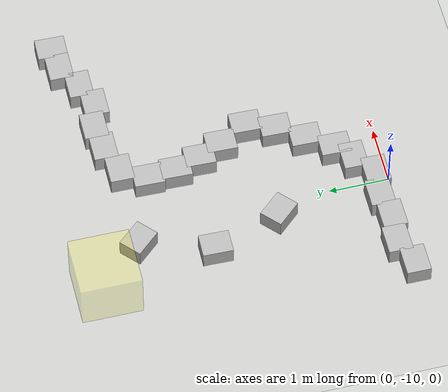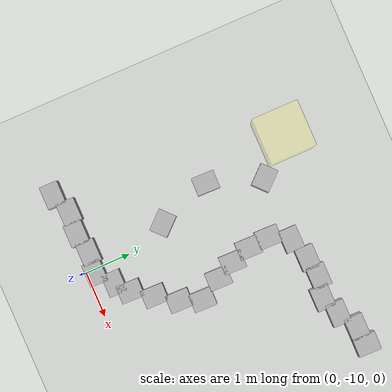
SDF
<sdf version="1.6">
 <world name="default">
  <model name="ground_plane">
   <static>1</static>
   <link name="link">
    <collision name="collision">
     <geometry><plane><normal>0 0 1</normal><size>100 100</size></plane></geometry>
     <surface>
      <contact><collide_bitmask>65535</collide_bitmask></contact>
      <friction><ode><mu>100</mu><mu2>50</mu2></ode></friction>
     </surface>
    </collision>
    <visual name="visual">
     <cast_shadows>0</cast_shadows>
     <geometry><plane><normal>0 0 1</normal><size>100 100</size></plane></geometry>
     <material>
      <script><uri>file://media/materials/scripts/gazebo.material</uri><name>Gazebo/Grey</name></script>
     </material>
    </visual>
   </link>
   <pose>0.215037 0.234206 0 0 -0 0</pose>
  </model>
  <model name="RegionEventBox_clone_0_clone_clone_0_clone_clone">
   <static>1</static>
   <pose>-1.01241 -5.02399 0 0 -0 0</pose>
   <link name="link">
    <visual name="visual">
     <transparency>0.75</transparency>
     <geometry><box><size>1 1 1.75</size></box></geometry>
     <material>
      <script><uri>file://media/materials/scripts/gazebo.material</uri><name>Gazebo/Yellow</name></script>
     </material>
    </visual>
   </link>
   <plugin name="region_event_box" filename="libRegionEventBoxPlugin.so">
    <event><name>model_in_region_event_box</name><type>inclusion</type><active>1</active></event>
   </plugin>
  </model>
  <model name="box_clone_3_clone_clone_clone_0_clone_4">
   <link name="cardboard_box_clone::link">
    <inertial>
     <mass>2</mass>
     <inertia>
      <ixx>0.0416667</ixx>
      <ixy>0</ixy>
      <ixz>0</ixz>
      <iyy>0.0566667</iyy>
      <iyz>0</iyz>
      <izz>0.0683333</izz>
     </inertia>
    </inertial>
    <visual name="visual">
     <pose>0 0 -0.15 0 -0 0</pose>
     <geometry>
      <mesh><uri>model://cardboard_box/meshes/cardboard_box.dae</uri><scale>1.25932 1.00745 0.755591</scale></mesh>
     </geometry>
    </visual>
    <collision name="collision">
     <geometry><box><size>0.5 0.4 0.3</size></box></geometry>
     <surface>
      <friction>
       <ode><mu>1</mu><mu2>1</mu2><fdir1>0 0 0</fdir1><slip1>0</slip1><slip2>0</slip2></ode>
       <torsional>
        <coefficient>1</coefficient>
        <patch_radius>0</patch_radius>
        <surface_radius>0</surface_radius>
        <use_patch_radius>1</use_patch_radius>
        <ode><slip>0</slip></ode>
       </torsional>
      </friction>
      <bounce><restitution_coefficient>0</restitution_coefficient><threshold>1e+06</threshold></bounce>
      <contact>
       <collide_without_contact>0</collide_without_contact>
       <collide_without_contact_bitmask>1</collide_without_contact_bitmask>
       <collide_bitmask>1</collide_bitmask>
       <ode>
        <soft_cfm>0</soft_cfm>
        <soft_erp>0.2</soft_erp>
        <kp>1e+07</kp>
        <kd>1</kd>
        <max_vel>0.1</max_vel>
        <min_depth>0.001</min_depth>
       </ode>
       <bullet>
        <split_impulse>1</split_impulse>
        <split_impulse_penetration_threshold>-0.01</split_impulse_penetration_threshold>
        <soft_cfm>0</soft_cfm>
        <soft_erp>0.2</soft_erp>
        <kp>1e+07</kp>
        <kd>1</kd>
       </bullet>
      </contact>
     </surface>
    </collision>
   </link>
   <static>1</static>
   <pose>3.73755 -5.15106 0.149 0 -0 1.55153</pose>
  </model>
  <model name="box_clone_4">
   <link name="cardboard_box_clone::link">
    <inertial>
     <mass>2</mass>
     <inertia>
      <ixx>0.0416667</ixx>
      <ixy>0</ixy>
      <ixz>0</ixz>
      <iyy>0.0566667</iyy>
      <iyz>0</iyz>
      <izz>0.0683333</izz>
     </inertia>
    </inertial>
    <visual name="visual">
     <pose>0 0 -0.15 0 -0 0</pose>
     <geometry>
      <mesh><uri>model://cardboard_box/meshes/cardboard_box.dae</uri><scale>1.25932 1.00745 0.755591</scale></mesh>
     </geometry>
    </visual>
    <collision name="collision">
     <geometry><box><size>0.5 0.4 0.3</size></box></geometry>
     <surface>
      <friction>
       <ode><mu>1</mu><mu2>1</mu2><fdir1>0 0 0</fdir1><slip1>0</slip1><slip2>0</slip2></ode>
       <torsional>
        <coefficient>1</coefficient>
        <patch_radius>0</patch_radius>
        <surface_radius>0</surface_radius>
        <use_patch_radius>1</use_patch_radius>
        <ode><slip>0</slip></ode>
       </torsional>
      </friction>
      <bounce><restitution_coefficient>0</restitution_coefficient><threshold>1e+06</threshold></bounce>
      <contact>
       <collide_without_contact>0</collide_without_contact>
       <collide_without_contact_bitmask>1</collide_without_contact_bitmask>
       <collide_bitmask>1</collide_bitmask>
       <ode>
        <soft_cfm>0</soft_cfm>
        <soft_erp>0.2</soft_erp>
        <kp>1e+07</kp>
        <kd>1</kd>
        <max_vel>0.1</max_vel>
        <min_depth>0.001</min_depth>
       </ode>
       <bullet>
        <split_impulse>1</split_impulse>
        <split_impulse_penetration_threshold>-0.01</split_impulse_penetration_threshold>
        <soft_cfm>0</soft_cfm>
        <soft_erp>0.2</soft_erp>
        <kp>1e+07</kp>
        <kd>1</kd>
       </bullet>
      </contact>
     </surface>
    </collision>
   </link>
   <static>1</static>
   <pose>3.32403 -5.19757 0.149 0 -0 0</pose>
  </model>
  <model name="box_clone_5">
   <link name="cardboard_box_clone::link">
    <inertial>
     <mass>2</mass>
     <inertia>
      <ixx>0.0416667</ixx>
      <ixy>0</ixy>
      <ixz>0</ixz>
      <iyy>0.0566667</iyy>
      <iyz>0</iyz>
      <izz>0.0683333</izz>
     </inertia>
    </inertial>
    <visual name="visual">
     <pose>0 0 -0.15 0 -0 0</pose>
     <geometry>
      <mesh><uri>model://cardboard_box/meshes/cardboard_box.dae</uri><scale>1.25932 1.00745 0.755591</scale></mesh>
     </geometry>
    </visual>
    <collision name="collision">
     <geometry><box><size>0.5 0.4 0.3</size></box></geometry>
     <surface>
      <friction>
       <ode><mu>1</mu><mu2>1</mu2><fdir1>0 0 0</fdir1><slip1>0</slip1><slip2>0</slip2></ode>
       <torsional>
        <coefficient>1</coefficient>
        <patch_radius>0</patch_radius>
        <surface_radius>0</surface_radius>
        <use_patch_radius>1</use_patch_radius>
        <ode><slip>0</slip></ode>
       </torsional>
      </friction>
      <bounce><restitution_coefficient>0</restitution_coefficient><threshold>1e+06</threshold></bounce>
      <contact>
       <collide_without_contact>0</collide_without_contact>
       <collide_without_contact_bitmask>1</collide_without_contact_bitmask>
       <collide_bitmask>1</collide_bitmask>
       <ode>
        <soft_cfm>0</soft_cfm>
        <soft_erp>0.2</soft_erp>
        <kp>1e+07</kp>
        <kd>1</kd>
        <max_vel>0.1</max_vel>
        <min_depth>0.001</min_depth>
       </ode>
       <bullet>
        <split_impulse>1</split_impulse>
        <split_impulse_penetration_threshold>-0.01</split_impulse_penetration_threshold>
        <soft_cfm>0</soft_cfm>
        <soft_erp>0.2</soft_erp>
        <kp>1e+07</kp>
        <kd>1</kd>
       </bullet>
      </contact>
     </surface>
    </collision>
   </link>
   <static>1</static>
   <pose>2.89622 -5.4423 0.149 0 -0 0</pose>
  </model>
  <model name="box_clone_6">
   <link name="cardboard_box_clone::link">
    <inertial>
     <mass>2</mass>
     <inertia>
      <ixx>0.0416667</ixx>
      <ixy>0</ixy>
      <ixz>0</ixz>
      <iyy>0.0566667</iyy>
      <iyz>0</iyz>
      <izz>0.0683333</izz>
     </inertia>
    </inertial>
    <visual name="visual">
     <pose>0 0 -0.15 0 -0 0</pose>
     <geometry>
      <mesh><uri>model://cardboard_box/meshes/cardboard_box.dae</uri><scale>1.25932 1.00745 0.755591</scale></mesh>
     </geometry>
    </visual>
    <collision name="collision">
     <geometry><box><size>0.5 0.4 0.3</size></box></geometry>
     <surface>
      <friction>
       <ode><mu>1</mu><mu2>1</mu2><fdir1>0 0 0</fdir1><slip1>0</slip1><slip2>0</slip2></ode>
       <torsional>
        <coefficient>1</coefficient>
        <patch_radius>0</patch_radius>
        <surface_radius>0</surface_radius>
        <use_patch_radius>1</use_patch_radius>
        <ode><slip>0</slip></ode>
       </torsional>
      </friction>
      <bounce><restitution_coefficient>0</restitution_coefficient><threshold>1e+06</threshold></bounce>
      <contact>
       <collide_without_contact>0</collide_without_contact>
       <collide_without_contact_bitmask>1</collide_without_contact_bitmask>
       <collide_bitmask>1</collide_bitmask>
       <ode>
        <soft_cfm>0</soft_cfm>
        <soft_erp>0.2</soft_erp>
        <kp>1e+07</kp>
        <kd>1</kd>
        <max_vel>0.1</max_vel>
        <min_depth>0.001</min_depth>
       </ode>
       <bullet>
        <split_impulse>1</split_impulse>
        <split_impulse_penetration_threshold>-0.01</split_impulse_penetration_threshold>
        <soft_cfm>0</soft_cfm>
        <soft_erp>0.2</soft_erp>
        <kp>1e+07</kp>
        <kd>1</kd>
       </bullet>
      </contact>
     </surface>
    </collision>
   </link>
   <static>1</static>
   <pose>2.46651 -5.6112 0.149 0 -0 0</pose>
  </model>
  <model name="box_clone_7">
   <link name="cardboard_box_clone::link">
    <inertial>
     <mass>2</mass>
     <inertia>
      <ixx>0.0416667</ixx>
      <ixy>0</ixy>
      <ixz>0</ixz>
      <iyy>0.0566667</iyy>
      <iyz>0</iyz>
      <izz>0.0683333</izz>
     </inertia>
    </inertial>
    <visual name="visual">
     <pose>0 0 -0.15 0 -0 0</pose>
     <geometry>
      <mesh><uri>model://cardboard_box/meshes/cardboard_box.dae</uri><scale>1.25932 1.00745 0.755591</scale></mesh>
     </geometry>
    </visual>
    <collision name="collision">
     <geometry><box><size>0.5 0.4 0.3</size></box></geometry>
     <surface>
      <friction>
       <ode><mu>1</mu><mu2>1</mu2><fdir1>0 0 0</fdir1><slip1>0</slip1><slip2>0</slip2></ode>
       <torsional>
        <coefficient>1</coefficient>
        <patch_radius>0</patch_radius>
        <surface_radius>0</surface_radius>
        <use_patch_radius>1</use_patch_radius>
        <ode><slip>0</slip></ode>
       </torsional>
      </friction>
      <bounce><restitution_coefficient>0</restitution_coefficient><threshold>1e+06</threshold></bounce>
      <contact>
       <collide_without_contact>0</collide_without_contact>
       <collide_without_contact_bitmask>1</collide_without_contact_bitmask>
       <collide_bitmask>1</collide_bitmask>
       <ode>
        <soft_cfm>0</soft_cfm>
        <soft_erp>0.2</soft_erp>
        <kp>1e+07</kp>
        <kd>1</kd>
        <max_vel>0.1</max_vel>
        <min_depth>0.001</min_depth>
       </ode>
       <bullet>
        <split_impulse>1</split_impulse>
        <split_impulse_penetration_threshold>-0.01</split_impulse_penetration_threshold>
        <soft_cfm>0</soft_cfm>
        <soft_erp>0.2</soft_erp>
        <kp>1e+07</kp>
        <kd>1</kd>
       </bullet>
      </contact>
     </surface>
    </collision>
   </link>
   <static>1</static>
   <pose>2.02097 -5.50404 0.149 0 -0 0</pose>
  </model>
  <model name="box_clone_8">
   <link name="cardboard_box_clone::link">
    <inertial>
     <mass>2</mass>
     <inertia>
      <ixx>0.0416667</ixx>
      <ixy>0</ixy>
      <ixz>0</ixz>
      <iyy>0.0566667</iyy>
      <iyz>0</iyz>
      <izz>0.0683333</izz>
     </inertia>
    </inertial>
    <visual name="visual">
     <pose>0 0 -0.15 0 -0 0</pose>
     <geometry>
      <mesh><uri>model://cardboard_box/meshes/cardboard_box.dae</uri><scale>1.25932 1.00745 0.755591</scale></mesh>
     </geometry>
    </visual>
    <collision name="collision">
     <geometry><box><size>0.5 0.4 0.3</size></box></geometry>
     <surface>
      <friction>
       <ode><mu>1</mu><mu2>1</mu2><fdir1>0 0 0</fdir1><slip1>0</slip1><slip2>0</slip2></ode>
       <torsional>
        <coefficient>1</coefficient>
        <patch_radius>0</patch_radius>
        <surface_radius>0</surface_radius>
        <use_patch_radius>1</use_patch_radius>
        <ode><slip>0</slip></ode>
       </torsional>
      </friction>
      <bounce><restitution_coefficient>0</restitution_coefficient><threshold>1e+06</threshold></bounce>
      <contact>
       <collide_without_contact>0</collide_without_contact>
       <collide_without_contact_bitmask>1</collide_without_contact_bitmask>
       <collide_bitmask>1</collide_bitmask>
       <ode>
        <soft_cfm>0</soft_cfm>
        <soft_erp>0.2</soft_erp>
        <kp>1e+07</kp>
        <kd>1</kd>
        <max_vel>0.1</max_vel>
        <min_depth>0.001</min_depth>
       </ode>
       <bullet>
        <split_impulse>1</split_impulse>
        <split_impulse_penetration_threshold>-0.01</split_impulse_penetration_threshold>
        <soft_cfm>0</soft_cfm>
        <soft_erp>0.2</soft_erp>
        <kp>1e+07</kp>
        <kd>1</kd>
       </bullet>
      </contact>
     </surface>
    </collision>
   </link>
   <static>1</static>
   <pose>1.57176 -5.56411 0.149 0 -0 0</pose>
  </model>
  <model name="box_clone_9">
   <link name="cardboard_box_clone::link">
    <inertial>
     <mass>2</mass>
     <inertia>
      <ixx>0.0416667</ixx>
      <ixy>0</ixy>
      <ixz>0</ixz>
      <iyy>0.0566667</iyy>
      <iyz>0</iyz>
      <izz>0.0683333</izz>
     </inertia>
    </inertial>
    <visual name="visual">
     <pose>0 0 -0.15 0 -0 0</pose>
     <geometry>
      <mesh><uri>model://cardboard_box/meshes/cardboard_box.dae</uri><scale>1.25932 1.00745 0.755591</scale></mesh>
     </geometry>
    </visual>
    <collision name="collision">
     <geometry><box><size>0.5 0.4 0.3</size></box></geometry>
     <surface>
      <friction>
       <ode><mu>1</mu><mu2>1</mu2><fdir1>0 0 0</fdir1><slip1>0</slip1><slip2>0</slip2></ode>
       <torsional>
        <coefficient>1</coefficient>
        <patch_radius>0</patch_radius>
        <surface_radius>0</surface_radius>
        <use_patch_radius>1</use_patch_radius>
        <ode><slip>0</slip></ode>
       </torsional>
      </friction>
      <bounce><restitution_coefficient>0</restitution_coefficient><threshold>1e+06</threshold></bounce>
      <contact>
       <collide_without_contact>0</collide_without_contact>
       <collide_without_contact_bitmask>1</collide_without_contact_bitmask>
       <collide_bitmask>1</collide_bitmask>
       <ode>
        <soft_cfm>0</soft_cfm>
        <soft_erp>0.2</soft_erp>
        <kp>1e+07</kp>
        <kd>1</kd>
        <max_vel>0.1</max_vel>
        <min_depth>0.001</min_depth>
       </ode>
       <bullet>
        <split_impulse>1</split_impulse>
        <split_impulse_penetration_threshold>-0.01</split_impulse_penetration_threshold>
        <soft_cfm>0</soft_cfm>
        <soft_erp>0.2</soft_erp>
        <kp>1e+07</kp>
        <kd>1</kd>
       </bullet>
      </contact>
     </surface>
    </collision>
   </link>
   <static>1</static>
   <pose>1.07912 -5.7245 0.149 0 -0 0</pose>
  </model>
  <model name="box_clone_3_clone_2">
   <link name="cardboard_box_clone::link">
    <inertial>
     <mass>2</mass>
     <inertia>
      <ixx>0.0416667</ixx>
      <ixy>0</ixy>
      <ixz>0</ixz>
      <iyy>0.0566667</iyy>
      <iyz>0</iyz>
      <izz>0.0683333</izz>
     </inertia>
    </inertial>
    <visual name="visual">
     <pose>0 0 -0.15 0 -0 0</pose>
     <geometry>
      <mesh><uri>model://cardboard_box/meshes/cardboard_box.dae</uri><scale>1.25932 1.00745 0.755591</scale></mesh>
     </geometry>
    </visual>
    <collision name="collision">
     <geometry><box><size>0.5 0.4 0.3</size></box></geometry>
     <surface>
      <friction>
       <ode><mu>1</mu><mu2>1</mu2><fdir1>0 0 0</fdir1><slip1>0</slip1><slip2>0</slip2></ode>
       <torsional>
        <coefficient>1</coefficient>
        <patch_radius>0</patch_radius>
        <surface_radius>0</surface_radius>
        <use_patch_radius>1</use_patch_radius>
        <ode><slip>0</slip></ode>
       </torsional>
      </friction>
      <bounce><restitution_coefficient>0</restitution_coefficient><threshold>1e+06</threshold></bounce>
      <contact>
       <collide_without_contact>0</collide_without_contact>
       <collide_without_contact_bitmask>1</collide_without_contact_bitmask>
       <collide_bitmask>1</collide_bitmask>
       <ode>
        <soft_cfm>0</soft_cfm>
        <soft_erp>0.2</soft_erp>
        <kp>1e+07</kp>
        <kd>1</kd>
        <max_vel>0.1</max_vel>
        <min_depth>0.001</min_depth>
       </ode>
       <bullet>
        <split_impulse>1</split_impulse>
        <split_impulse_penetration_threshold>-0.01</split_impulse_penetration_threshold>
        <soft_cfm>0</soft_cfm>
        <soft_erp>0.2</soft_erp>
        <kp>1e+07</kp>
        <kd>1</kd>
       </bullet>
      </contact>
     </surface>
    </collision>
   </link>
   <static>1</static>
   <pose>0.840472 -6.1457 0.149 0 -0 1.55153</pose>
  </model>
  <model name="box_clone_3_clone_3">
   <link name="cardboard_box_clone::link">
    <inertial>
     <mass>2</mass>
     <inertia>
      <ixx>0.0416667</ixx>
      <ixy>0</ixy>
      <ixz>0</ixz>
      <iyy>0.0566667</iyy>
      <iyz>0</iyz>
      <izz>0.0683333</izz>
     </inertia>
    </inertial>
    <visual name="visual">
     <pose>0 0 -0.15 0 -0 0</pose>
     <geometry>
      <mesh><uri>model://cardboard_box/meshes/cardboard_box.dae</uri><scale>1.25932 1.00745 0.755591</scale></mesh>
     </geometry>
    </visual>
    <collision name="collision">
     <geometry><box><size>0.5 0.4 0.3</size></box></geometry>
     <surface>
      <friction>
       <ode><mu>1</mu><mu2>1</mu2><fdir1>0 0 0</fdir1><slip1>0</slip1><slip2>0</slip2></ode>
       <torsional>
        <coefficient>1</coefficient>
        <patch_radius>0</patch_radius>
        <surface_radius>0</surface_radius>
        <use_patch_radius>1</use_patch_radius>
        <ode><slip>0</slip></ode>
       </torsional>
      </friction>
      <bounce><restitution_coefficient>0</restitution_coefficient><threshold>1e+06</threshold></bounce>
      <contact>
       <collide_without_contact>0</collide_without_contact>
       <collide_without_contact_bitmask>1</collide_without_contact_bitmask>
       <collide_bitmask>1</collide_bitmask>
       <ode>
        <soft_cfm>0</soft_cfm>
        <soft_erp>0.2</soft_erp>
        <kp>1e+07</kp>
        <kd>1</kd>
        <max_vel>0.1</max_vel>
        <min_depth>0.001</min_depth>
       </ode>
       <bullet>
        <split_impulse>1</split_impulse>
        <split_impulse_penetration_threshold>-0.01</split_impulse_penetration_threshold>
        <soft_cfm>0</soft_cfm>
        <soft_erp>0.2</soft_erp>
        <kp>1e+07</kp>
        <kd>1</kd>
       </bullet>
      </contact>
     </surface>
    </collision>
   </link>
   <static>1</static>
   <pose>0.881072 -6.61692 0.149 0 -0 1.55153</pose>
  </model>
  <model name="box_clone_3_clone_4">
   <link name="cardboard_box_clone::link">
    <inertial>
     <mass>2</mass>
     <inertia>
      <ixx>0.0416667</ixx>
      <ixy>0</ixy>
      <ixz>0</ixz>
      <iyy>0.0566667</iyy>
      <iyz>0</iyz>
      <izz>0.0683333</izz>
     </inertia>
    </inertial>
    <visual name="visual">
     <pose>0 0 -0.15 0 -0 0</pose>
     <geometry>
      <mesh><uri>model://cardboard_box/meshes/cardboard_box.dae</uri><scale>1.25932 1.00745 0.755591</scale></mesh>
     </geometry>
    </visual>
    <collision name="collision">
     <geometry><box><size>0.5 0.4 0.3</size></box></geometry>
     <surface>
      <friction>
       <ode><mu>1</mu><mu2>1</mu2><fdir1>0 0 0</fdir1><slip1>0</slip1><slip2>0</slip2></ode>
       <torsional>
        <coefficient>1</coefficient>
        <patch_radius>0</patch_radius>
        <surface_radius>0</surface_radius>
        <use_patch_radius>1</use_patch_radius>
        <ode><slip>0</slip></ode>
       </torsional>
      </friction>
      <bounce><restitution_coefficient>0</restitution_coefficient><threshold>1e+06</threshold></bounce>
      <contact>
       <collide_without_contact>0</collide_without_contact>
       <collide_without_contact_bitmask>1</collide_without_contact_bitmask>
       <collide_bitmask>1</collide_bitmask>
       <ode>
        <soft_cfm>0</soft_cfm>
        <soft_erp>0.2</soft_erp>
        <kp>1e+07</kp>
        <kd>1</kd>
        <max_vel>0.1</max_vel>
        <min_depth>0.001</min_depth>
       </ode>
       <bullet>
        <split_impulse>1</split_impulse>
        <split_impulse_penetration_threshold>-0.01</split_impulse_penetration_threshold>
        <soft_cfm>0</soft_cfm>
        <soft_erp>0.2</soft_erp>
        <kp>1e+07</kp>
        <kd>1</kd>
       </bullet>
      </contact>
     </surface>
    </collision>
   </link>
   <static>1</static>
   <pose>1.02403 -7.05167 0.149 0 -0 1.55153</pose>
  </model>
  <model name="box_clone_3_clone_5">
   <link name="cardboard_box_clone::link">
    <inertial>
     <mass>2</mass>
     <inertia>
      <ixx>0.0416667</ixx>
      <ixy>0</ixy>
      <ixz>0</ixz>
      <iyy>0.0566667</iyy>
      <iyz>0</iyz>
      <izz>0.0683333</izz>
     </inertia>
    </inertial>
    <visual name="visual">
     <pose>0 0 -0.15 0 -0 0</pose>
     <geometry>
      <mesh><uri>model://cardboard_box/meshes/cardboard_box.dae</uri><scale>1.25932 1.00745 0.755591</scale></mesh>
     </geometry>
    </visual>
    <collision name="collision">
     <geometry><box><size>0.5 0.4 0.3</size></box></geometry>
     <surface>
      <friction>
       <ode><mu>1</mu><mu2>1</mu2><fdir1>0 0 0</fdir1><slip1>0</slip1><slip2>0</slip2></ode>
       <torsional>
        <coefficient>1</coefficient>
        <patch_radius>0</patch_radius>
        <surface_radius>0</surface_radius>
        <use_patch_radius>1</use_patch_radius>
        <ode><slip>0</slip></ode>
       </torsional>
      </friction>
      <bounce><restitution_coefficient>0</restitution_coefficient><threshold>1e+06</threshold></bounce>
      <contact>
       <collide_without_contact>0</collide_without_contact>
       <collide_without_contact_bitmask>1</collide_without_contact_bitmask>
       <collide_bitmask>1</collide_bitmask>
       <ode>
        <soft_cfm>0</soft_cfm>
        <soft_erp>0.2</soft_erp>
        <kp>1e+07</kp>
        <kd>1</kd>
        <max_vel>0.1</max_vel>
        <min_depth>0.001</min_depth>
       </ode>
       <bullet>
        <split_impulse>1</split_impulse>
        <split_impulse_penetration_threshold>-0.01</split_impulse_penetration_threshold>
        <soft_cfm>0</soft_cfm>
        <soft_erp>0.2</soft_erp>
        <kp>1e+07</kp>
        <kd>1</kd>
       </bullet>
      </contact>
     </surface>
    </collision>
   </link>
   <static>1</static>
   <pose>1.21764 -7.45565 0.149 0 -0 1.55153</pose>
  </model>
  <model name="box_clone_3_clone_6">
   <link name="cardboard_box_clone::link">
    <inertial>
     <mass>2</mass>
     <inertia>
      <ixx>0.0416667</ixx>
      <ixy>0</ixy>
      <ixz>0</ixz>
      <iyy>0.0566667</iyy>
      <iyz>0</iyz>
      <izz>0.0683333</izz>
     </inertia>
    </inertial>
    <visual name="visual">
     <pose>0 0 -0.15 0 -0 0</pose>
     <geometry>
      <mesh><uri>model://cardboard_box/meshes/cardboard_box.dae</uri><scale>1.25932 1.00745 0.755591</scale></mesh>
     </geometry>
    </visual>
    <collision name="collision">
     <geometry><box><size>0.5 0.4 0.3</size></box></geometry>
     <surface>
      <friction>
       <ode><mu>1</mu><mu2>1</mu2><fdir1>0 0 0</fdir1><slip1>0</slip1><slip2>0</slip2></ode>
       <torsional>
        <coefficient>1</coefficient>
        <patch_radius>0</patch_radius>
        <surface_radius>0</surface_radius>
        <use_patch_radius>1</use_patch_radius>
        <ode><slip>0</slip></ode>
       </torsional>
      </friction>
      <bounce><restitution_coefficient>0</restitution_coefficient><threshold>1e+06</threshold></bounce>
      <contact>
       <collide_without_contact>0</collide_without_contact>
       <collide_without_contact_bitmask>1</collide_without_contact_bitmask>
       <collide_bitmask>1</collide_bitmask>
       <ode>
        <soft_cfm>0</soft_cfm>
        <soft_erp>0.2</soft_erp>
        <kp>1e+07</kp>
        <kd>1</kd>
        <max_vel>0.1</max_vel>
        <min_depth>0.001</min_depth>
       </ode>
       <bullet>
        <split_impulse>1</split_impulse>
        <split_impulse_penetration_threshold>-0.01</split_impulse_penetration_threshold>
        <soft_cfm>0</soft_cfm>
        <soft_erp>0.2</soft_erp>
        <kp>1e+07</kp>
        <kd>1</kd>
       </bullet>
      </contact>
     </surface>
    </collision>
   </link>
   <static>1</static>
   <pose>1.49562 -7.94138 0.149 0 -0 1.55153</pose>
  </model>
  <model name="box_clone_3_clone_7">
   <link name="cardboard_box_clone::link">
    <inertial>
     <mass>2</mass>
     <inertia>
      <ixx>0.0416667</ixx>
      <ixy>0</ixy>
      <ixz>0</ixz>
      <iyy>0.0566667</iyy>
      <iyz>0</iyz>
      <izz>0.0683333</izz>
     </inertia>
    </inertial>
    <visual name="visual">
     <pose>0 0 -0.15 0 -0 0</pose>
     <geometry>
      <mesh><uri>model://cardboard_box/meshes/cardboard_box.dae</uri><scale>1.25932 1.00745 0.755591</scale></mesh>
     </geometry>
    </visual>
    <collision name="collision">
     <geometry><box><size>0.5 0.4 0.3</size></box></geometry>
     <surface>
      <friction>
       <ode><mu>1</mu><mu2>1</mu2><fdir1>0 0 0</fdir1><slip1>0</slip1><slip2>0</slip2></ode>
       <torsional>
        <coefficient>1</coefficient>
        <patch_radius>0</patch_radius>
        <surface_radius>0</surface_radius>
        <use_patch_radius>1</use_patch_radius>
        <ode><slip>0</slip></ode>
       </torsional>
      </friction>
      <bounce><restitution_coefficient>0</restitution_coefficient><threshold>1e+06</threshold></bounce>
      <contact>
       <collide_without_contact>0</collide_without_contact>
       <collide_without_contact_bitmask>1</collide_without_contact_bitmask>
       <collide_bitmask>1</collide_bitmask>
       <ode>
        <soft_cfm>0</soft_cfm>
        <soft_erp>0.2</soft_erp>
        <kp>1e+07</kp>
        <kd>1</kd>
        <max_vel>0.1</max_vel>
        <min_depth>0.001</min_depth>
       </ode>
       <bullet>
        <split_impulse>1</split_impulse>
        <split_impulse_penetration_threshold>-0.01</split_impulse_penetration_threshold>
        <soft_cfm>0</soft_cfm>
        <soft_erp>0.2</soft_erp>
        <kp>1e+07</kp>
        <kd>1</kd>
       </bullet>
      </contact>
     </surface>
    </collision>
   </link>
   <static>1</static>
   <pose>1.31681 -8.40154 0.149 0 -0 1.55153</pose>
  </model>
  <model name="box_clone_3_clone_8">
   <link name="cardboard_box_clone::link">
    <inertial>
     <mass>2</mass>
     <inertia>
      <ixx>0.0416667</ixx>
      <ixy>0</ixy>
      <ixz>0</ixz>
      <iyy>0.0566667</iyy>
      <iyz>0</iyz>
      <izz>0.0683333</izz>
     </inertia>
    </inertial>
    <visual name="visual">
     <pose>0 0 -0.15 0 -0 0</pose>
     <geometry>
      <mesh><uri>model://cardboard_box/meshes/cardboard_box.dae</uri><scale>1.25932 1.00745 0.755591</scale></mesh>
     </geometry>
    </visual>
    <collision name="collision">
     <geometry><box><size>0.5 0.4 0.3</size></box></geometry>
     <surface>
      <friction>
       <ode><mu>1</mu><mu2>1</mu2><fdir1>0 0 0</fdir1><slip1>0</slip1><slip2>0</slip2></ode>
       <torsional>
        <coefficient>1</coefficient>
        <patch_radius>0</patch_radius>
        <surface_radius>0</surface_radius>
        <use_patch_radius>1</use_patch_radius>
        <ode><slip>0</slip></ode>
       </torsional>
      </friction>
      <bounce><restitution_coefficient>0</restitution_coefficient><threshold>1e+06</threshold></bounce>
      <contact>
       <collide_without_contact>0</collide_without_contact>
       <collide_without_contact_bitmask>1</collide_without_contact_bitmask>
       <collide_bitmask>1</collide_bitmask>
       <ode>
        <soft_cfm>0</soft_cfm>
        <soft_erp>0.2</soft_erp>
        <kp>1e+07</kp>
        <kd>1</kd>
        <max_vel>0.1</max_vel>
        <min_depth>0.001</min_depth>
       </ode>
       <bullet>
        <split_impulse>1</split_impulse>
        <split_impulse_penetration_threshold>-0.01</split_impulse_penetration_threshold>
        <soft_cfm>0</soft_cfm>
        <soft_erp>0.2</soft_erp>
        <kp>1e+07</kp>
        <kd>1</kd>
       </bullet>
      </contact>
     </surface>
    </collision>
   </link>
   <static>1</static>
   <pose>1.01457 -8.83833 0.149 0 -0 1.55153</pose>
  </model>
  <model name="box_clone_3_clone_9">
   <link name="cardboard_box_clone::link">
    <inertial>
     <mass>2</mass>
     <inertia>
      <ixx>0.0416667</ixx>
      <ixy>0</ixy>
      <ixz>0</ixz>
      <iyy>0.0566667</iyy>
      <iyz>0</iyz>
      <izz>0.0683333</izz>
     </inertia>
    </inertial>
    <visual name="visual">
     <pose>0 0 -0.15 0 -0 0</pose>
     <geometry>
      <mesh><uri>model://cardboard_box/meshes/cardboard_box.dae</uri><scale>1.25932 1.00745 0.755591</scale></mesh>
     </geometry>
    </visual>
    <collision name="collision">
     <geometry><box><size>0.5 0.4 0.3</size></box></geometry>
     <surface>
      <friction>
       <ode><mu>1</mu><mu2>1</mu2><fdir1>0 0 0</fdir1><slip1>0</slip1><slip2>0</slip2></ode>
       <torsional>
        <coefficient>1</coefficient>
        <patch_radius>0</patch_radius>
        <surface_radius>0</surface_radius>
        <use_patch_radius>1</use_patch_radius>
        <ode><slip>0</slip></ode>
       </torsional>
      </friction>
      <bounce><restitution_coefficient>0</restitution_coefficient><threshold>1e+06</threshold></bounce>
      <contact>
       <collide_without_contact>0</collide_without_contact>
       <collide_without_contact_bitmask>1</collide_without_contact_bitmask>
       <collide_bitmask>1</collide_bitmask>
       <ode>
        <soft_cfm>0</soft_cfm>
        <soft_erp>0.2</soft_erp>
        <kp>1e+07</kp>
        <kd>1</kd>
        <max_vel>0.1</max_vel>
        <min_depth>0.001</min_depth>
       </ode>
       <bullet>
        <split_impulse>1</split_impulse>
        <split_impulse_penetration_threshold>-0.01</split_impulse_penetration_threshold>
        <soft_cfm>0</soft_cfm>
        <soft_erp>0.2</soft_erp>
        <kp>1e+07</kp>
        <kd>1</kd>
       </bullet>
      </contact>
     </surface>
    </collision>
   </link>
   <static>1</static>
   <pose>0.718459 -9.26594 0.149 0 -0 1.55153</pose>
  </model>
  <model name="box_clone_23">
   <link name="cardboard_box_clone::link">
    <inertial>
     <mass>2</mass>
     <inertia>
      <ixx>0.0416667</ixx>
      <ixy>0</ixy>
      <ixz>0</ixz>
      <iyy>0.0566667</iyy>
      <iyz>0</iyz>
      <izz>0.0683333</izz>
     </inertia>
    </inertial>
    <visual name="visual">
     <pose>0 0 -0.15 0 -0 0</pose>
     <geometry>
      <mesh><uri>model://cardboard_box/meshes/cardboard_box.dae</uri><scale>1.25932 1.00745 0.755591</scale></mesh>
     </geometry>
    </visual>
    <collision name="collision">
     <geometry><box><size>0.5 0.4 0.3</size></box></geometry>
     <surface>
      <friction>
       <ode><mu>1</mu><mu2>1</mu2><fdir1>0 0 0</fdir1><slip1>0</slip1><slip2>0</slip2></ode>
       <torsional>
        <coefficient>1</coefficient>
        <patch_radius>0</patch_radius>
        <surface_radius>0</surface_radius>
        <use_patch_radius>1</use_patch_radius>
        <ode><slip>0</slip></ode>
       </torsional>
      </friction>
      <bounce><restitution_coefficient>0</restitution_coefficient><threshold>1e+06</threshold></bounce>
      <contact>
       <collide_without_contact>0</collide_without_contact>
       <collide_without_contact_bitmask>1</collide_without_contact_bitmask>
       <collide_bitmask>1</collide_bitmask>
       <ode>
        <soft_cfm>0</soft_cfm>
        <soft_erp>0.2</soft_erp>
        <kp>1e+07</kp>
        <kd>1</kd>
        <max_vel>0.1</max_vel>
        <min_depth>0.001</min_depth>
       </ode>
       <bullet>
        <split_impulse>1</split_impulse>
        <split_impulse_penetration_threshold>-0.01</split_impulse_penetration_threshold>
        <soft_cfm>0</soft_cfm>
        <soft_erp>0.2</soft_erp>
        <kp>1e+07</kp>
        <kd>1</kd>
       </bullet>
      </contact>
     </surface>
    </collision>
   </link>
   <static>1</static>
   <pose>-1.78489 -9.95299 0.149 0 -0 0</pose>
  </model>
  <model name="box_clone_24">
   <link name="cardboard_box_clone::link">
    <inertial>
     <mass>2</mass>
     <inertia>
      <ixx>0.0416667</ixx>
      <ixy>0</ixy>
      <ixz>0</ixz>
      <iyy>0.0566667</iyy>
      <iyz>0</iyz>
      <izz>0.0683333</izz>
     </inertia>
    </inertial>
    <visual name="visual">
     <pose>0 0 -0.15 0 -0 0</pose>
     <geometry>
      <mesh><uri>model://cardboard_box/meshes/cardboard_box.dae</uri><scale>1.25932 1.00745 0.755591</scale></mesh>
     </geometry>
    </visual>
    <collision name="collision">
     <geometry><box><size>0.5 0.4 0.3</size></box></geometry>
     <surface>
      <friction>
       <ode><mu>1</mu><mu2>1</mu2><fdir1>0 0 0</fdir1><slip1>0</slip1><slip2>0</slip2></ode>
       <torsional>
        <coefficient>1</coefficient>
        <patch_radius>0</patch_radius>
        <surface_radius>0</surface_radius>
        <use_patch_radius>1</use_patch_radius>
        <ode><slip>0</slip></ode>
       </torsional>
      </friction>
      <bounce><restitution_coefficient>0</restitution_coefficient><threshold>1e+06</threshold></bounce>
      <contact>
       <collide_without_contact>0</collide_without_contact>
       <collide_without_contact_bitmask>1</collide_without_contact_bitmask>
       <collide_bitmask>1</collide_bitmask>
       <ode>
        <soft_cfm>0</soft_cfm>
        <soft_erp>0.2</soft_erp>
        <kp>1e+07</kp>
        <kd>1</kd>
        <max_vel>0.1</max_vel>
        <min_depth>0.001</min_depth>
       </ode>
       <bullet>
        <split_impulse>1</split_impulse>
        <split_impulse_penetration_threshold>-0.01</split_impulse_penetration_threshold>
        <soft_cfm>0</soft_cfm>
        <soft_erp>0.2</soft_erp>
        <kp>1e+07</kp>
        <kd>1</kd>
       </bullet>
      </contact>
     </surface>
    </collision>
   </link>
   <static>1</static>
   <pose>-1.32422 -9.77706 0.149 0 -0 0</pose>
  </model>
  <model name="box_clone_25">
   <link name="cardboard_box_clone::link">
    <inertial>
     <mass>2</mass>
     <inertia>
      <ixx>0.0416667</ixx>
      <ixy>0</ixy>
      <ixz>0</ixz>
      <iyy>0.0566667</iyy>
      <iyz>0</iyz>
      <izz>0.0683333</izz>
     </inertia>
    </inertial>
    <visual name="visual">
     <pose>0 0 -0.15 0 -0 0</pose>
     <geometry>
      <mesh><uri>model://cardboard_box/meshes/cardboard_box.dae</uri><scale>1.25932 1.00745 0.755591</scale></mesh>
     </geometry>
    </visual>
    <collision name="collision">
     <geometry><box><size>0.5 0.4 0.3</size></box></geometry>
     <surface>
      <friction>
       <ode><mu>1</mu><mu2>1</mu2><fdir1>0 0 0</fdir1><slip1>0</slip1><slip2>0</slip2></ode>
       <torsional>
        <coefficient>1</coefficient>
        <patch_radius>0</patch_radius>
        <surface_radius>0</surface_radius>
        <use_patch_radius>1</use_patch_radius>
        <ode><slip>0</slip></ode>
       </torsional>
      </friction>
      <bounce><restitution_coefficient>0</restitution_coefficient><threshold>1e+06</threshold></bounce>
      <contact>
       <collide_without_contact>0</collide_without_contact>
       <collide_without_contact_bitmask>1</collide_without_contact_bitmask>
       <collide_bitmask>1</collide_bitmask>
       <ode>
        <soft_cfm>0</soft_cfm>
        <soft_erp>0.2</soft_erp>
        <kp>1e+07</kp>
        <kd>1</kd>
        <max_vel>0.1</max_vel>
        <min_depth>0.001</min_depth>
       </ode>
       <bullet>
        <split_impulse>1</split_impulse>
        <split_impulse_penetration_threshold>-0.01</split_impulse_penetration_threshold>
        <soft_cfm>0</soft_cfm>
        <soft_erp>0.2</soft_erp>
        <kp>1e+07</kp>
        <kd>1</kd>
       </bullet>
      </contact>
     </surface>
    </collision>
   </link>
   <static>1</static>
   <pose>-0.844404 -9.82173 0.149 0 -0 0</pose>
  </model>
  <model name="box_clone_26">
   <link name="cardboard_box_clone::link">
    <inertial>
     <mass>2</mass>
     <inertia>
      <ixx>0.0416667</ixx>
      <ixy>0</ixy>
      <ixz>0</ixz>
      <iyy>0.0566667</iyy>
      <iyz>0</iyz>
      <izz>0.0683333</izz>
     </inertia>
    </inertial>
    <visual name="visual">
     <pose>0 0 -0.15 0 -0 0</pose>
     <geometry>
      <mesh><uri>model://cardboard_box/meshes/cardboard_box.dae</uri><scale>1.25932 1.00745 0.755591</scale></mesh>
     </geometry>
    </visual>
    <collision name="collision">
     <geometry><box><size>0.5 0.4 0.3</size></box></geometry>
     <surface>
      <friction>
       <ode><mu>1</mu><mu2>1</mu2><fdir1>0 0 0</fdir1><slip1>0</slip1><slip2>0</slip2></ode>
       <torsional>
        <coefficient>1</coefficient>
        <patch_radius>0</patch_radius>
        <surface_radius>0</surface_radius>
        <use_patch_radius>1</use_patch_radius>
        <ode><slip>0</slip></ode>
       </torsional>
      </friction>
      <bounce><restitution_coefficient>0</restitution_coefficient><threshold>1e+06</threshold></bounce>
      <contact>
       <collide_without_contact>0</collide_without_contact>
       <collide_without_contact_bitmask>1</collide_without_contact_bitmask>
       <collide_bitmask>1</collide_bitmask>
       <ode>
        <soft_cfm>0</soft_cfm>
        <soft_erp>0.2</soft_erp>
        <kp>1e+07</kp>
        <kd>1</kd>
        <max_vel>0.1</max_vel>
        <min_depth>0.001</min_depth>
       </ode>
       <bullet>
        <split_impulse>1</split_impulse>
        <split_impulse_penetration_threshold>-0.01</split_impulse_penetration_threshold>
        <soft_cfm>0</soft_cfm>
        <soft_erp>0.2</soft_erp>
        <kp>1e+07</kp>
        <kd>1</kd>
       </bullet>
      </contact>
     </surface>
    </collision>
   </link>
   <static>1</static>
   <pose>-0.379165 -9.74391 0.149 0 -0 0</pose>
  </model>
  <model name="box_clone_27">
   <link name="cardboard_box_clone::link">
    <inertial>
     <mass>2</mass>
     <inertia>
      <ixx>0.0416667</ixx>
      <ixy>0</ixy>
      <ixz>0</ixz>
      <iyy>0.0566667</iyy>
      <iyz>0</iyz>
      <izz>0.0683333</izz>
     </inertia>
    </inertial>
    <visual name="visual">
     <pose>0 0 -0.15 0 -0 0</pose>
     <geometry>
      <mesh><uri>model://cardboard_box/meshes/cardboard_box.dae</uri><scale>1.25932 1.00745 0.755591</scale></mesh>
     </geometry>
    </visual>
    <collision name="collision">
     <geometry><box><size>0.5 0.4 0.3</size></box></geometry>
     <surface>
      <friction>
       <ode><mu>1</mu><mu2>1</mu2><fdir1>0 0 0</fdir1><slip1>0</slip1><slip2>0</slip2></ode>
       <torsional>
        <coefficient>1</coefficient>
        <patch_radius>0</patch_radius>
        <surface_radius>0</surface_radius>
        <use_patch_radius>1</use_patch_radius>
        <ode><slip>0</slip></ode>
       </torsional>
      </friction>
      <bounce><restitution_coefficient>0</restitution_coefficient><threshold>1e+06</threshold></bounce>
      <contact>
       <collide_without_contact>0</collide_without_contact>
       <collide_without_contact_bitmask>1</collide_without_contact_bitmask>
       <collide_bitmask>1</collide_bitmask>
       <ode>
        <soft_cfm>0</soft_cfm>
        <soft_erp>0.2</soft_erp>
        <kp>1e+07</kp>
        <kd>1</kd>
        <max_vel>0.1</max_vel>
        <min_depth>0.001</min_depth>
       </ode>
       <bullet>
        <split_impulse>1</split_impulse>
        <split_impulse_penetration_threshold>-0.01</split_impulse_penetration_threshold>
        <soft_cfm>0</soft_cfm>
        <soft_erp>0.2</soft_erp>
        <kp>1e+07</kp>
        <kd>1</kd>
       </bullet>
      </contact>
     </surface>
    </collision>
   </link>
   <static>1</static>
   <pose>0.070947 -9.79323 0.149 0 -0 0</pose>
  </model>
  <model name="box_clone_28">
   <link name="cardboard_box_clone::link">
    <inertial>
     <mass>2</mass>
     <inertia>
      <ixx>0.0416667</ixx>
      <ixy>0</ixy>
      <ixz>0</ixz>
      <iyy>0.0566667</iyy>
      <iyz>0</iyz>
      <izz>0.0683333</izz>
     </inertia>
    </inertial>
    <visual name="visual">
     <pose>0 0 -0.15 0 -0 0</pose>
     <geometry>
      <mesh><uri>model://cardboard_box/meshes/cardboard_box.dae</uri><scale>1.25932 1.00745 0.755591</scale></mesh>
     </geometry>
    </visual>
    <collision name="collision">
     <geometry><box><size>0.5 0.4 0.3</size></box></geometry>
     <surface>
      <friction>
       <ode><mu>1</mu><mu2>1</mu2><fdir1>0 0 0</fdir1><slip1>0</slip1><slip2>0</slip2></ode>
       <torsional>
        <coefficient>1</coefficient>
        <patch_radius>0</patch_radius>
        <surface_radius>0</surface_radius>
        <use_patch_radius>1</use_patch_radius>
        <ode><slip>0</slip></ode>
       </torsional>
      </friction>
      <bounce><restitution_coefficient>0</restitution_coefficient><threshold>1e+06</threshold></bounce>
      <contact>
       <collide_without_contact>0</collide_without_contact>
       <collide_without_contact_bitmask>1</collide_without_contact_bitmask>
       <collide_bitmask>1</collide_bitmask>
       <ode>
        <soft_cfm>0</soft_cfm>
        <soft_erp>0.2</soft_erp>
        <kp>1e+07</kp>
        <kd>1</kd>
        <max_vel>0.1</max_vel>
        <min_depth>0.001</min_depth>
       </ode>
       <bullet>
        <split_impulse>1</split_impulse>
        <split_impulse_penetration_threshold>-0.01</split_impulse_penetration_threshold>
        <soft_cfm>0</soft_cfm>
        <soft_erp>0.2</soft_erp>
        <kp>1e+07</kp>
        <kd>1</kd>
       </bullet>
      </contact>
     </surface>
    </collision>
   </link>
   <static>1</static>
   <pose>0.431255 -9.50687 0.149 0 -0 0</pose>
  </model>
  <model name="box_clone_3_clone_clone_clone_3_clone_clone_clone_2">
   <link name="cardboard_box_clone::link">
    <inertial>
     <mass>2</mass>
     <inertia>
      <ixx>0.0416667</ixx>
      <ixy>0</ixy>
      <ixz>0</ixz>
      <iyy>0.0566667</iyy>
      <iyz>0</iyz>
      <izz>0.0683333</izz>
     </inertia>
    </inertial>
    <visual name="visual">
     <pose>0 0 -0.15 0 -0 0</pose>
     <geometry>
      <mesh><uri>model://cardboard_box/meshes/cardboard_box.dae</uri><scale>1.25932 1.00745 0.755591</scale></mesh>
     </geometry>
    </visual>
    <collision name="collision">
     <geometry><box><size>0.5 0.4 0.3</size></box></geometry>
     <surface>
      <friction>
       <ode><mu>1</mu><mu2>1</mu2><fdir1>0 0 0</fdir1><slip1>0</slip1><slip2>0</slip2></ode>
       <torsional>
        <coefficient>1</coefficient>
        <patch_radius>0</patch_radius>
        <surface_radius>0</surface_radius>
        <use_patch_radius>1</use_patch_radius>
        <ode><slip>0</slip></ode>
       </torsional>
      </friction>
      <bounce><restitution_coefficient>0</restitution_coefficient><threshold>1e+06</threshold></bounce>
      <contact>
       <collide_without_contact>0</collide_without_contact>
       <collide_without_contact_bitmask>1</collide_without_contact_bitmask>
       <collide_bitmask>1</collide_bitmask>
       <ode>
        <soft_cfm>0</soft_cfm>
        <soft_erp>0.2</soft_erp>
        <kp>1e+07</kp>
        <kd>1</kd>
        <max_vel>0.1</max_vel>
        <min_depth>0.001</min_depth>
       </ode>
       <bullet>
        <split_impulse>1</split_impulse>
        <split_impulse_penetration_threshold>-0.01</split_impulse_penetration_threshold>
        <soft_cfm>0</soft_cfm>
        <soft_erp>0.2</soft_erp>
        <kp>1e+07</kp>
        <kd>1</kd>
       </bullet>
      </contact>
     </surface>
    </collision>
   </link>
   <static>1</static>
   <pose>-0.316135 -8.06227 0.149 0 -0 2.31083</pose>
  </model>
  <model name="box_clone_3_clone_clone_clone_3_clone_clone_clone_1">
   <link name="cardboard_box_clone::link">
    <inertial>
     <mass>2</mass>
     <inertia>
      <ixx>0.0416667</ixx>
      <ixy>0</ixy>
      <ixz>0</ixz>
      <iyy>0.0566667</iyy>
      <iyz>0</iyz>
      <izz>0.0683333</izz>
     </inertia>
    </inertial>
    <visual name="visual">
     <pose>0 0 -0.15 0 -0 0</pose>
     <geometry>
      <mesh><uri>model://cardboard_box/meshes/cardboard_box.dae</uri><scale>1.25932 1.00745 0.755591</scale></mesh>
     </geometry>
    </visual>
    <collision name="collision">
     <geometry><box><size>0.5 0.4 0.3</size></box></geometry>
     <surface>
      <friction>
       <ode><mu>1</mu><mu2>1</mu2><fdir1>0 0 0</fdir1><slip1>0</slip1><slip2>0</slip2></ode>
       <torsional>
        <coefficient>1</coefficient>
        <patch_radius>0</patch_radius>
        <surface_radius>0</surface_radius>
        <use_patch_radius>1</use_patch_radius>
        <ode><slip>0</slip></ode>
       </torsional>
      </friction>
      <bounce><restitution_coefficient>0</restitution_coefficient><threshold>1e+06</threshold></bounce>
      <contact>
       <collide_without_contact>0</collide_without_contact>
       <collide_without_contact_bitmask>1</collide_without_contact_bitmask>
       <collide_bitmask>1</collide_bitmask>
       <ode>
        <soft_cfm>0</soft_cfm>
        <soft_erp>0.2</soft_erp>
        <kp>1e+07</kp>
        <kd>1</kd>
        <max_vel>0.1</max_vel>
        <min_depth>0.001</min_depth>
       </ode>
       <bullet>
        <split_impulse>1</split_impulse>
        <split_impulse_penetration_threshold>-0.01</split_impulse_penetration_threshold>
        <soft_cfm>0</soft_cfm>
        <soft_erp>0.2</soft_erp>
        <kp>1e+07</kp>
        <kd>1</kd>
       </bullet>
      </contact>
     </surface>
    </collision>
   </link>
   <static>1</static>
   <pose>-0.33021 -5.71784 0.149 0 -0 2.31083</pose>
  </model>
  <model name="box_clone_3_clone_clone_15">
   <link name="cardboard_box_clone::link">
    <inertial>
     <mass>2</mass>
     <inertia>
      <ixx>0.0416667</ixx>
      <ixy>0</ixy>
      <ixz>0</ixz>
      <iyy>0.0566667</iyy>
      <iyz>0</iyz>
      <izz>0.0683333</izz>
     </inertia>
    </inertial>
    <visual name="visual">
     <pose>0 0 -0.15 0 -0 0</pose>
     <geometry>
      <mesh><uri>model://cardboard_box/meshes/cardboard_box.dae</uri><scale>1.25932 1.00745 0.755591</scale></mesh>
     </geometry>
    </visual>
    <collision name="collision">
     <geometry><box><size>0.5 0.4 0.3</size></box></geometry>
     <surface>
      <friction>
       <ode><mu>1</mu><mu2>1</mu2><fdir1>0 0 0</fdir1><slip1>0</slip1><slip2>0</slip2></ode>
       <torsional>
        <coefficient>1</coefficient>
        <patch_radius>0</patch_radius>
        <surface_radius>0</surface_radius>
        <use_patch_radius>1</use_patch_radius>
        <ode><slip>0</slip></ode>
       </torsional>
      </friction>
      <bounce><restitution_coefficient>0</restitution_coefficient><threshold>1e+06</threshold></bounce>
      <contact>
       <collide_without_contact>0</collide_without_contact>
       <collide_without_contact_bitmask>1</collide_without_contact_bitmask>
       <collide_bitmask>1</collide_bitmask>
       <ode>
        <soft_cfm>0</soft_cfm>
        <soft_erp>0.2</soft_erp>
        <kp>1e+07</kp>
        <kd>1</kd>
        <max_vel>0.1</max_vel>
        <min_depth>0.001</min_depth>
       </ode>
       <bullet>
        <split_impulse>1</split_impulse>
        <split_impulse_penetration_threshold>-0.01</split_impulse_penetration_threshold>
        <soft_cfm>0</soft_cfm>
        <soft_erp>0.2</soft_erp>
        <kp>1e+07</kp>
        <kd>1</kd>
       </bullet>
      </contact>
     </surface>
    </collision>
   </link>
   <static>1</static>
   <pose>-0.729935 -6.90395 0.149 0 -0 1.55153</pose>
  </model>
 </world>
</sdf>
